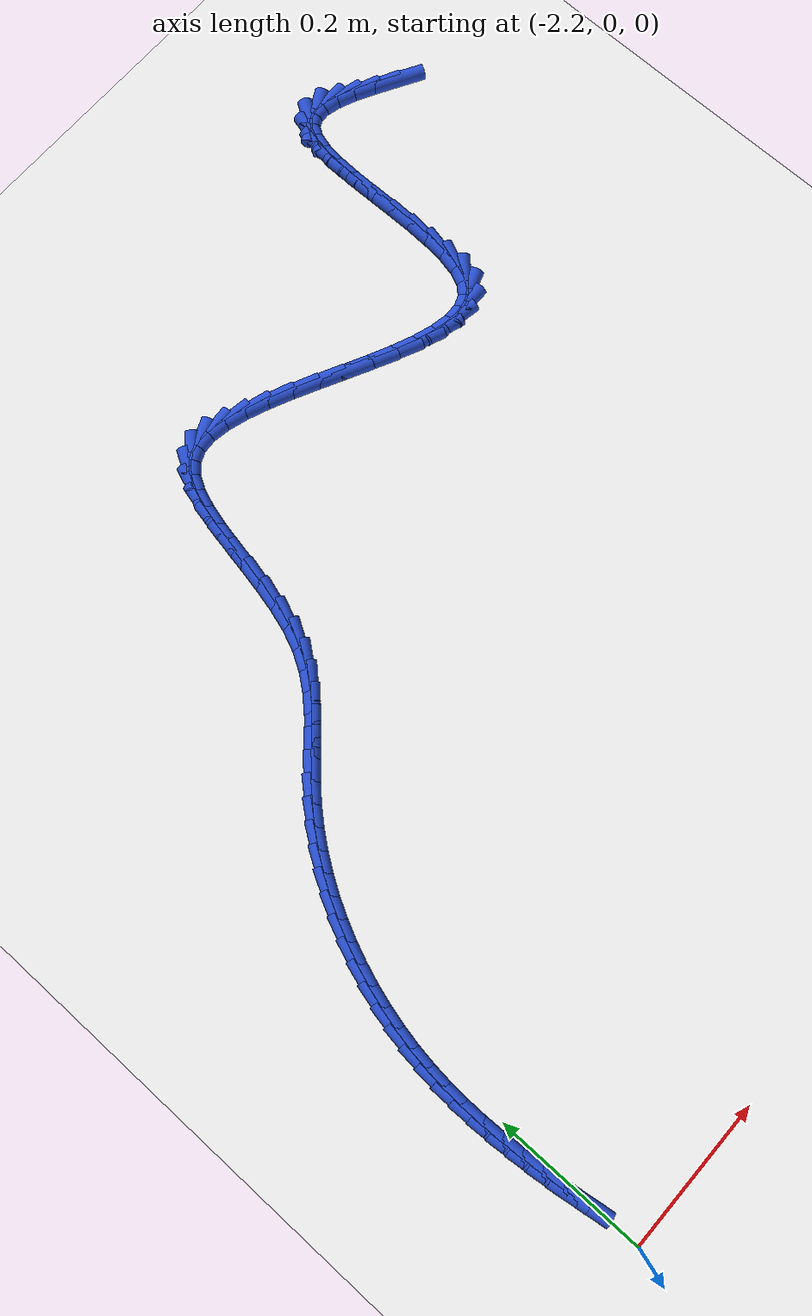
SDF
<sdf version="1.6">
 <world name="default">
  <model name="ground_plane">
   <static>1</static>
   <link name="link">
    <collision name="collision">
     <geometry><plane><normal>0 0 1</normal><size>100 100</size></plane></geometry>
     <surface><friction><ode><mu>100</mu><mu2>50</mu2></ode></friction></surface>
    </collision>
    <visual name="visual">
     <cast_shadows>0</cast_shadows>
     <geometry><plane><normal>0 0 1</normal><size>100 100</size></plane></geometry>
     <material>
      <script><uri>file://media/materials/scripts/gazebo.material</uri><name>Gazebo/WhiteGlow</name></script>
     </material>
    </visual>
   </link>
  </model>
  <model name="line">
   <link name="link_72">
    <pose>-1.284185238181484 1.181666461028741 0.01 0 1.57 -0.5184025050078016</pose>
    <collision name="collision">
     <geometry><cylinder><radius>0.01</radius><length>0.08</length></cylinder></geometry>
    </collision>
    <visual name="visual">
     <material>
      <script><name>Gazebo/Blue</name><uri>file://media/materials/scripts/gazebo.material</uri></script>
     </material>
     <geometry><cylinder><radius>0.01</radius><length>0.08</length></cylinder></geometry>
    </visual>
   </link>
   <link name="link_73">
    <pose>-1.311747661953524 1.1973892408751665 0.01 0 1.57 -0.47705244257798435</pose>
    <collision name="collision">
     <geometry><cylinder><radius>0.01</radius><length>0.08</length></cylinder></geometry>
    </collision>
    <visual name="visual">
     <material>
      <script><name>Gazebo/Blue</name><uri>file://media/materials/scripts/gazebo.material</uri></script>
     </material>
     <geometry><cylinder><radius>0.01</radius><length>0.08</length></cylinder></geometry>
    </visual>
   </link>
   <link name="link_74">
    <pose>-1.3373293025014035 1.2106116265727436 0.01 0 1.57 -0.39543208439316047</pose>
    <collision name="collision">
     <geometry><cylinder><radius>0.01</radius><length>0.08</length></cylinder></geometry>
    </collision>
    <visual name="visual">
     <material>
      <script><name>Gazebo/Blue</name><uri>file://media/materials/scripts/gazebo.material</uri></script>
     </material>
     <geometry><cylinder><radius>0.01</radius><length>0.08</length></cylinder></geometry>
    </visual>
   </link>
   <link name="link_75">
    <pose>-1.3604942921763472 1.2202811359694141 0.01 0 1.57 -0.24433140604695042</pose>
    <collision name="collision">
     <geometry><cylinder><radius>0.01</radius><length>0.08</length></cylinder></geometry>
    </collision>
    <visual name="visual">
     <material>
      <script><name>Gazebo/Blue</name><uri>file://media/materials/scripts/gazebo.material</uri></script>
     </material>
     <geometry><cylinder><radius>0.01</radius><length>0.08</length></cylinder></geometry>
    </visual>
   </link>
   <link name="link_76">
    <pose>-1.3808067633295782 1.225345286913119 0.01 0 1.57 0.03485938675276248</pose>
    <collision name="collision">
     <geometry><cylinder><radius>0.01</radius><length>0.08</length></cylinder></geometry>
    </collision>
    <visual name="visual">
     <material>
      <script><name>Gazebo/Blue</name><uri>file://media/materials/scripts/gazebo.material</uri></script>
     </material>
     <geometry><cylinder><radius>0.01</radius><length>0.08</length></cylinder></geometry>
    </visual>
   </link>
   <link name="link_77">
    <pose>-1.3978308483123199 1.2247515972518 0.01 0 1.57 0.5022140779273673</pose>
    <collision name="collision">
     <geometry><cylinder><radius>0.01</radius><length>0.08</length></cylinder></geometry>
    </collision>
    <visual name="visual">
     <material>
      <script><name>Gazebo/Blue</name><uri>file://media/materials/scripts/gazebo.material</uri></script>
     </material>
     <geometry><cylinder><radius>0.01</radius><length>0.08</length></cylinder></geometry>
    </visual>
   </link>
   <link name="link_78">
    <pose>-1.4111306794757963 1.2174475848333979 0.01 0 1.57 1.0084803409328873</pose>
    <collision name="collision">
     <geometry><cylinder><radius>0.01</radius><length>0.08</length></cylinder></geometry>
    </collision>
    <visual name="visual">
     <material>
      <script><name>Gazebo/Blue</name><uri>file://media/materials/scripts/gazebo.material</uri></script>
     </material>
     <geometry><cylinder><radius>0.01</radius><length>0.08</length></cylinder></geometry>
    </visual>
   </link>
   <link name="link_79">
    <pose>-1.4204280710886583 1.2026940486102145 0.01 0 1.57 1.3050376127300412</pose>
    <collision name="collision">
     <geometry><cylinder><radius>0.01</radius><length>0.08</length></cylinder></geometry>
    </collision>
    <visual name="visual">
     <material>
      <script><name>Gazebo/Blue</name><uri>file://media/materials/scripts/gazebo.material</uri></script>
     </material>
     <geometry><cylinder><radius>0.01</radius><length>0.08</length></cylinder></geometry>
    </visual>
   </link>
   <link name="link_80">
    <pose>-1.4262418623791329 1.181335310005672 0.01 0 1.57 1.4548565718521387</pose>
    <collision name="collision">
     <geometry><cylinder><radius>0.01</radius><length>0.08</length></cylinder></geometry>
    </collision>
    <visual name="visual">
     <material>
      <script><name>Gazebo/Blue</name><uri>file://media/materials/scripts/gazebo.material</uri></script>
     </material>
     <geometry><cylinder><radius>0.01</radius><length>0.08</length></cylinder></geometry>
    </visual>
   </link>
   <link name="link_81">
    <pose>-1.4293421349865743 1.1547148567477672 0.01 0 1.57 1.5329301169874554</pose>
    <collision name="collision">
     <geometry><cylinder><radius>0.01</radius><length>0.08</length></cylinder></geometry>
    </collision>
    <visual name="visual">
     <material>
      <script><name>Gazebo/Blue</name><uri>file://media/materials/scripts/gazebo.material</uri></script>
     </material>
     <geometry><cylinder><radius>0.01</radius><length>0.08</length></cylinder></geometry>
    </visual>
   </link>
   <link name="link_82">
    <pose>-1.430499064962297 1.1241763641413793 0.01 0 1.57 -1.5703059854283532</pose>
    <collision name="collision">
     <geometry><cylinder><radius>0.01</radius><length>0.08</length></cylinder></geometry>
    </collision>
    <visual name="visual">
     <material>
      <script><name>Gazebo/Blue</name><uri>file://media/materials/scripts/gazebo.material</uri></script>
     </material>
     <geometry><cylinder><radius>0.01</radius><length>0.08</length></cylinder></geometry>
    </visual>
   </link>
   <link name="link_83">
    <pose>-1.4304828283576159 1.0910635074913895 0.01 0 1.57 -1.558590064796977</pose>
    <collision name="collision">
     <geometry><cylinder><radius>0.01</radius><length>0.08</length></cylinder></geometry>
    </collision>
    <visual name="visual">
     <material>
      <script><name>Gazebo/Blue</name><uri>file://media/materials/scripts/gazebo.material</uri></script>
     </material>
     <geometry><cylinder><radius>0.01</radius><length>0.08</length></cylinder></geometry>
    </visual>
   </link>
   <link name="link_84">
    <pose>-1.4300636012238443 1.0567199621026768 0.01 0 1.57 -1.5692760018793463</pose>
    <collision name="collision">
     <geometry><cylinder><radius>0.01</radius><length>0.08</length></cylinder></geometry>
    </collision>
    <visual name="visual">
     <material>
      <script><name>Gazebo/Blue</name><uri>file://media/materials/scripts/gazebo.material</uri></script>
     </material>
     <geometry><cylinder><radius>0.01</radius><length>0.08</length></cylinder></geometry>
    </visual>
   </link>
   <link name="link_85">
    <pose>-1.430011559612297 1.0224894032801215 0.01 0 1.57 1.5376930466570178</pose>
    <collision name="collision">
     <geometry><cylinder><radius>0.01</radius><length>0.08</length></cylinder></geometry>
    </collision>
    <visual name="visual">
     <material>
      <script><name>Gazebo/Blue</name><uri>file://media/materials/scripts/gazebo.material</uri></script>
     </material>
     <geometry><cylinder><radius>0.01</radius><length>0.08</length></cylinder></geometry>
    </visual>
   </link>
   <link name="link_86">
    <pose>-1.4310968795742873 0.9897155063286027 0.01 0 1.57 1.4712762692113137</pose>
    <collision name="collision">
     <geometry><cylinder><radius>0.01</radius><length>0.08</length></cylinder></geometry>
    </collision>
    <visual name="visual">
     <material>
      <script><name>Gazebo/Blue</name><uri>file://media/materials/scripts/gazebo.material</uri></script>
     </material>
     <geometry><cylinder><radius>0.01</radius><length>0.08</length></cylinder></geometry>
    </visual>
   </link>
   <link name="link_87">
    <pose>-1.43408973716113 0.9597419465530008 0.01 0 1.57 1.3546865842491658</pose>
    <collision name="collision">
     <geometry><cylinder><radius>0.01</radius><length>0.08</length></cylinder></geometry>
    </collision>
    <visual name="visual">
     <material>
      <script><name>Gazebo/Blue</name><uri>file://media/materials/scripts/gazebo.material</uri></script>
     </material>
     <geometry><cylinder><radius>0.01</radius><length>0.08</length></cylinder></geometry>
    </visual>
   </link>
   <link name="link_88">
    <pose>-1.4397603084241395 0.9339123992581961 0.01 0 1.57 1.1493895482305674</pose>
    <collision name="collision">
     <geometry><cylinder><radius>0.01</radius><length>0.08</length></cylinder></geometry>
    </collision>
    <visual name="visual">
     <material>
      <script><name>Gazebo/Blue</name><uri>file://media/materials/scripts/gazebo.material</uri></script>
     </material>
     <geometry><cylinder><radius>0.01</radius><length>0.08</length></cylinder></geometry>
    </visual>
   </link>
   <link name="link_89">
    <pose>-1.448878769414629 0.9135705397490681 0.01 0 1.57 0.7942676043196346</pose>
    <collision name="collision">
     <geometry><cylinder><radius>0.01</radius><length>0.08</length></cylinder></geometry>
    </collision>
    <visual name="visual">
     <material>
      <script><name>Gazebo/Blue</name><uri>file://media/materials/scripts/gazebo.material</uri></script>
     </material>
     <geometry><cylinder><radius>0.01</radius><length>0.08</length></cylinder></geometry>
    </visual>
   </link>
   <link name="link_90">
    <pose>-1.4621915370798817 0.9000194988729014 0.01 0 1.57 0.354196371251093</pose>
    <collision name="collision">
     <geometry><cylinder><radius>0.01</radius><length>0.08</length></cylinder></geometry>
    </collision>
    <visual name="visual">
     <material>
      <script><name>Gazebo/Blue</name><uri>file://media/materials/scripts/gazebo.material</uri></script>
     </material>
     <geometry><cylinder><radius>0.01</radius><length>0.08</length></cylinder></geometry>
    </visual>
   </link>
   <link name="link_91">
    <pose>-1.4798223298849547 0.8934997844010691 0.01 0 1.57 0.018136367292139327</pose>
    <collision name="collision">
     <geometry><cylinder><radius>0.01</radius><length>0.08</length></cylinder></geometry>
    </collision>
    <visual name="visual">
     <material>
      <script><name>Gazebo/Blue</name><uri>file://media/materials/scripts/gazebo.material</uri></script>
     </material>
     <geometry><cylinder><radius>0.01</radius><length>0.08</length></cylinder></geometry>
    </visual>
   </link>
   <link name="link_92">
    <pose>-1.5012266149029456 0.8931115458579381 0.01 0 1.57 -0.1921995068091973</pose>
    <collision name="collision">
     <geometry><cylinder><radius>0.01</radius><length>0.08</length></cylinder></geometry>
    </collision>
    <visual name="visual">
     <material>
      <script><name>Gazebo/Blue</name><uri>file://media/materials/scripts/gazebo.material</uri></script>
     </material>
     <geometry><cylinder><radius>0.01</radius><length>0.08</length></cylinder></geometry>
    </visual>
   </link>
   <link name="link_93">
    <pose>-1.525826975282518 0.8978988169784029 0.01 0 1.57 -0.3195603212550733</pose>
    <collision name="collision">
     <geometry><cylinder><radius>0.01</radius><length>0.08</length></cylinder></geometry>
    </collision>
    <visual name="visual">
     <material>
      <script><name>Gazebo/Blue</name><uri>file://media/materials/scripts/gazebo.material</uri></script>
     </material>
     <geometry><cylinder><radius>0.01</radius><length>0.08</length></cylinder></geometry>
    </visual>
   </link>
   <link name="link_94">
    <pose>-1.553045994172335 0.9069056314973586 0.01 0 1.57 -0.3970782770921557</pose>
    <collision name="collision">
     <geometry><cylinder><radius>0.01</radius><length>0.08</length></cylinder></geometry>
    </collision>
    <visual name="visual">
     <material>
      <script><name>Gazebo/Blue</name><uri>file://media/materials/scripts/gazebo.material</uri></script>
     </material>
     <geometry><cylinder><radius>0.01</radius><length>0.08</length></cylinder></geometry>
    </visual>
   </link>
   <link name="link_95">
    <pose>-1.5823062547210582 0.9191760231497003 0.01 0 1.57 -0.4430250004340558</pose>
    <collision name="collision">
     <geometry><cylinder><radius>0.01</radius><length>0.08</length></cylinder></geometry>
    </collision>
    <visual name="visual">
     <material>
      <script><name>Gazebo/Blue</name><uri>file://media/materials/scripts/gazebo.material</uri></script>
     </material>
     <geometry><cylinder><radius>0.01</radius><length>0.08</length></cylinder></geometry>
    </visual>
   </link>
   <link name="link_96">
    <pose>-1.6130303400773507 0.9337540256703221 0.01 0 1.57 -0.4667909839030013</pose>
    <collision name="collision">
     <geometry><cylinder><radius>0.01</radius><length>0.08</length></cylinder></geometry>
    </collision>
    <visual name="visual">
     <material>
      <script><name>Gazebo/Blue</name><uri>file://media/materials/scripts/gazebo.material</uri></script>
     </material>
     <geometry><cylinder><radius>0.01</radius><length>0.08</length></cylinder></geometry>
    </visual>
   </link>
   <link name="link_97">
    <pose>-1.6446408333898743 0.9496836727941192 0.01 0 1.57 -0.4727682061259887</pose>
    <collision name="collision">
     <geometry><cylinder><radius>0.01</radius><length>0.08</length></cylinder></geometry>
    </collision>
    <visual name="visual">
     <material>
      <script><name>Gazebo/Blue</name><uri>file://media/materials/scripts/gazebo.material</uri></script>
     </material>
     <geometry><cylinder><radius>0.01</radius><length>0.08</length></cylinder></geometry>
    </visual>
   </link>
   <link name="link_98">
    <pose>-1.6765603178072923 0.9660089982559867 0.01 0 1.57 -0.46211747291487204</pose>
    <collision name="collision">
     <geometry><cylinder><radius>0.01</radius><length>0.08</length></cylinder></geometry>
    </collision>
    <visual name="visual">
     <material>
      <script><name>Gazebo/Blue</name><uri>file://media/materials/scripts/gazebo.material</uri></script>
     </material>
     <geometry><cylinder><radius>0.01</radius><length>0.08</length></cylinder></geometry>
    </visual>
   </link>
   <link name="link_99">
    <pose>-1.7082113764782656 0.9817740357908187 0.01 0 1.57 -0.43323682837639693</pose>
    <collision name="collision">
     <geometry><cylinder><radius>0.01</radius><length>0.08</length></cylinder></geometry>
    </collision>
    <visual name="visual">
     <material>
      <script><name>Gazebo/Blue</name><uri>file://media/materials/scripts/gazebo.material</uri></script>
     </material>
     <geometry><cylinder><radius>0.01</radius><length>0.08</length></cylinder></geometry>
    </visual>
   </link>
   <link name="link_100">
    <pose>-1.7390165925514598 0.996022819133511 0.01 0 1.57 -0.3812038963590724</pose>
    <collision name="collision">
     <geometry><cylinder><radius>0.01</radius><length>0.08</length></cylinder></geometry>
    </collision>
    <visual name="visual">
     <material>
      <script><name>Gazebo/Blue</name><uri>file://media/materials/scripts/gazebo.material</uri></script>
     </material>
     <geometry><cylinder><radius>0.01</radius><length>0.08</length></cylinder></geometry>
    </visual>
   </link>
   <link name="link_101">
    <pose>-1.7683985491755343 1.0077993820189577 0.01 0 1.57 -0.2959402347343625</pose>
    <collision name="collision">
     <geometry><cylinder><radius>0.01</radius><length>0.08</length></cylinder></geometry>
    </collision>
    <visual name="visual">
     <material>
      <script><name>Gazebo/Blue</name><uri>file://media/materials/scripts/gazebo.material</uri></script>
     </material>
     <geometry><cylinder><radius>0.01</radius><length>0.08</length></cylinder></geometry>
    </visual>
   </link>
   <link name="link_102">
    <pose>-1.7957798294991532 1.0161477581820537 0.01 0 1.57 -0.15848674019851228</pose>
    <collision name="collision">
     <geometry><cylinder><radius>0.01</radius><length>0.08</length></cylinder></geometry>
    </collision>
    <visual name="visual">
     <material>
      <script><name>Gazebo/Blue</name><uri>file://media/materials/scripts/gazebo.material</uri></script>
     </material>
     <geometry><cylinder><radius>0.01</radius><length>0.08</length></cylinder></geometry>
    </visual>
   </link>
   <link name="link_103">
    <pose>-1.8205830166709782 1.0201119813576938 0.01 0 1.57 0.06347322209823193</pose>
    <collision name="collision">
     <geometry><cylinder><radius>0.01</radius><length>0.08</length></cylinder></geometry>
    </collision>
    <visual name="visual">
     <material>
      <script><name>Gazebo/Blue</name><uri>file://media/materials/scripts/gazebo.material</uri></script>
     </material>
     <geometry><cylinder><radius>0.01</radius><length>0.08</length></cylinder></geometry>
    </visual>
   </link>
   <link name="link_104">
    <pose>-1.8422306938396722 1.0187360852807728 0.01 0 1.57 0.4029114048233174</pose>
    <collision name="collision">
     <geometry><cylinder><radius>0.01</radius><length>0.08</length></cylinder></geometry>
    </collision>
    <visual name="visual">
     <material>
      <script><name>Gazebo/Blue</name><uri>file://media/materials/scripts/gazebo.material</uri></script>
     </material>
     <geometry><cylinder><radius>0.01</radius><length>0.08</length></cylinder></geometry>
    </visual>
   </link>
   <link name="link_105">
    <pose>-1.8601639971135135 1.0110923861882375 0.01 0 1.57 0.7768106653489705</pose>
    <collision name="collision">
     <geometry><cylinder><radius>0.01</radius><length>0.08</length></cylinder></geometry>
    </collision>
    <visual name="visual">
     <material>
      <script><name>Gazebo/Blue</name><uri>file://media/materials/scripts/gazebo.material</uri></script>
     </material>
     <geometry><cylinder><radius>0.01</radius><length>0.08</length></cylinder></geometry>
    </visual>
   </link>
   <link name="link_106">
    <pose>-1.8743870941230691 0.9971114968106473 0.01 0 1.57 1.0483372128779123</pose>
    <collision name="collision">
     <geometry><cylinder><radius>0.01</radius><length>0.08</length></cylinder></geometry>
    </collision>
    <visual name="visual">
     <material>
      <script><name>Gazebo/Blue</name><uri>file://media/materials/scripts/gazebo.material</uri></script>
     </material>
     <geometry><cylinder><radius>0.01</radius><length>0.08</length></cylinder></geometry>
    </visual>
   </link>
   <link name="link_107">
    <pose>-1.8855552791628323 0.9777166203649234 0.01 0 1.57 1.2168730650824295</pose>
    <collision name="collision">
     <geometry><cylinder><radius>0.01</radius><length>0.08</length></cylinder></geometry>
    </collision>
    <visual name="visual">
     <material>
      <script><name>Gazebo/Blue</name><uri>file://media/materials/scripts/gazebo.material</uri></script>
     </material>
     <geometry><cylinder><radius>0.01</radius><length>0.08</length></cylinder></geometry>
    </visual>
   </link>
   <link name="link_108">
    <pose>-1.8943601353134512 0.9538862794181149 0.01 0 1.57 1.315110002035121</pose>
    <collision name="collision">
     <geometry><cylinder><radius>0.01</radius><length>0.08</length></cylinder></geometry>
    </collision>
    <visual name="visual">
     <material>
      <script><name>Gazebo/Blue</name><uri>file://media/materials/scripts/gazebo.material</uri></script>
     </material>
     <geometry><cylinder><radius>0.01</radius><length>0.08</length></cylinder></geometry>
    </visual>
   </link>
   <link name="link_109">
    <pose>-1.9014932456555746 0.9265989965372712 0.01 0 1.57 1.3669546927265779</pose>
    <collision name="collision">
     <geometry><cylinder><radius>0.01</radius><length>0.08</length></cylinder></geometry>
    </collision>
    <visual name="visual">
     <material>
      <script><name>Gazebo/Blue</name><uri>file://media/materials/scripts/gazebo.material</uri></script>
     </material>
     <geometry><cylinder><radius>0.01</radius><length>0.08</length></cylinder></geometry>
    </visual>
   </link>
   <link name="link_110">
    <pose>-1.907646193269852 0.8968332942894431 0.01 0 1.57 1.3853844764474892</pose>
    <collision name="collision">
     <geometry><cylinder><radius>0.01</radius><length>0.08</length></cylinder></geometry>
    </collision>
    <visual name="visual">
     <material>
      <script><name>Gazebo/Blue</name><uri>file://media/materials/scripts/gazebo.material</uri></script>
     </material>
     <geometry><cylinder><radius>0.01</radius><length>0.08</length></cylinder></geometry>
    </visual>
   </link>
   <link name="link_111">
    <pose>-1.9135105612369316 0.8655676952416796 0.01 0 1.57 1.3761253981010435</pose>
    <collision name="collision">
     <geometry><cylinder><radius>0.01</radius><length>0.08</length></cylinder></geometry>
    </collision>
    <visual name="visual">
     <material>
      <script><name>Gazebo/Blue</name><uri>file://media/materials/scripts/gazebo.material</uri></script>
     </material>
     <geometry><cylinder><radius>0.01</radius><length>0.08</length></cylinder></geometry>
    </visual>
   </link>
   <link name="link_112">
    <pose>-1.9197779326374622 0.8337807219610306 0.01 0 1.57 1.3400010315377042</pose>
    <collision name="collision">
     <geometry><cylinder><radius>0.01</radius><length>0.08</length></cylinder></geometry>
    </collision>
    <visual name="visual">
     <material>
      <script><name>Gazebo/Blue</name><uri>file://media/materials/scripts/gazebo.material</uri></script>
     </material>
     <geometry><cylinder><radius>0.01</radius><length>0.08</length></cylinder></geometry>
    </visual>
   </link>
   <link name="link_113">
    <pose>-1.9271398905520924 0.8024508970145449 0.01 0 1.57 1.2738282813133208</pose>
    <collision name="collision">
     <geometry><cylinder><radius>0.01</radius><length>0.08</length></cylinder></geometry>
    </collision>
    <visual name="visual">
     <material>
      <script><name>Gazebo/Blue</name><uri>file://media/materials/scripts/gazebo.material</uri></script>
     </material>
     <geometry><cylinder><radius>0.01</radius><length>0.08</length></cylinder></geometry>
    </visual>
   </link>
   <link name="link_114">
    <pose>-1.9362880180614714 0.7725567429692735 0.01 0 1.57 1.1705637170387078</pose>
    <collision name="collision">
     <geometry><cylinder><radius>0.01</radius><length>0.08</length></cylinder></geometry>
    </collision>
    <visual name="visual">
     <material>
      <script><name>Gazebo/Blue</name><uri>file://media/materials/scripts/gazebo.material</uri></script>
     </material>
     <geometry><cylinder><radius>0.01</radius><length>0.08</length></cylinder></geometry>
    </visual>
   </link>
   <link name="link_115">
    <pose>-1.9479138958042108 0.7450767793287286 0.01 0 1.57 1.0328350369906198</pose>
    <collision name="collision">
     <geometry><cylinder><radius>0.01</radius><length>0.08</length></cylinder></geometry>
    </collision>
    <visual name="visual">
     <material>
      <script><name>Gazebo/Blue</name><uri>file://media/materials/scripts/gazebo.material</uri></script>
     </material>
     <geometry><cylinder><radius>0.01</radius><length>0.08</length></cylinder></geometry>
    </visual>
   </link>
   <link name="link_116">
    <pose>-1.9624670325772149 0.7206858463493545 0.01 0 1.57 0.9070067130095395</pose>
    <collision name="collision">
     <geometry><cylinder><radius>0.01</radius><length>0.08</length></cylinder></geometry>
    </collision>
    <visual name="visual">
     <material>
      <script><name>Gazebo/Blue</name><uri>file://media/materials/scripts/gazebo.material</uri></script>
     </material>
     <geometry><cylinder><radius>0.01</radius><length>0.08</length></cylinder></geometry>
    </visual>
   </link>
   <link name="link_117">
    <pose>-1.9794906886368462 0.6989218950380746 0.01 0 1.57 0.812261770192222</pose>
    <collision name="collision">
     <geometry><cylinder><radius>0.01</radius><length>0.08</length></cylinder></geometry>
    </collision>
    <visual name="visual">
     <material>
      <script><name>Gazebo/Blue</name><uri>file://media/materials/scripts/gazebo.material</uri></script>
     </material>
     <geometry><cylinder><radius>0.01</radius><length>0.08</length></cylinder></geometry>
    </visual>
   </link>
   <link name="link_118">
    <pose>-1.998316090040067 0.6790568793921126 0.01 0 1.57 0.7527017967321166</pose>
    <collision name="collision">
     <geometry><cylinder><radius>0.01</radius><length>0.08</length></cylinder></geometry>
    </collision>
    <visual name="visual">
     <material>
      <script><name>Gazebo/Blue</name><uri>file://media/materials/scripts/gazebo.material</uri></script>
     </material>
     <geometry><cylinder><radius>0.01</radius><length>0.08</length></cylinder></geometry>
    </visual>
   </link>
   <link name="link_119">
    <pose>-2.0182744628438396 0.6603627534086918 0.01 0 1.57 0.7293134776081187</pose>
    <collision name="collision">
     <geometry><cylinder><radius>0.01</radius><length>0.08</length></cylinder></geometry>
    </collision>
    <visual name="visual">
     <material>
      <script><name>Gazebo/Blue</name><uri>file://media/materials/scripts/gazebo.material</uri></script>
     </material>
     <geometry><cylinder><radius>0.01</radius><length>0.08</length></cylinder></geometry>
    </visual>
   </link>
   <link name="link_120">
    <pose>-2.0386970331051257 0.6421114710850357 0.01 0 1.57 0.7420365914663666</pose>
    <collision name="collision">
     <geometry><cylinder><radius>0.01</radius><length>0.08</length></cylinder></geometry>
    </collision>
    <visual name="visual">
     <material>
      <script><name>Gazebo/Blue</name><uri>file://media/materials/scripts/gazebo.material</uri></script>
     </material>
     <geometry><cylinder><radius>0.01</radius><length>0.08</length></cylinder></geometry>
    </visual>
   </link>
   <link name="link_121">
    <pose>-2.0589150268808885 0.6235749864183683 0.01 0 1.57 0.7894998637552949</pose>
    <collision name="collision">
     <geometry><cylinder><radius>0.01</radius><length>0.08</length></cylinder></geometry>
    </collision>
    <visual name="visual">
     <material>
      <script><name>Gazebo/Blue</name><uri>file://media/materials/scripts/gazebo.material</uri></script>
     </material>
     <geometry><cylinder><radius>0.01</radius><length>0.08</length></cylinder></geometry>
    </visual>
   </link>
   <link name="link_122">
    <pose>-2.0782795120118753 0.6040509915003192 0.01 0 1.57 0.8514536949295336</pose>
    <collision name="collision">
     <geometry><cylinder><radius>0.01</radius><length>0.08</length></cylinder></geometry>
    </collision>
    <visual name="visual">
     <material>
      <script><name>Gazebo/Blue</name><uri>file://media/materials/scripts/gazebo.material</uri></script>
     </material>
     <geometry><cylinder><radius>0.01</radius><length>0.08</length></cylinder></geometry>
    </visual>
   </link>
   <link name="link_123">
    <pose>-2.096478253898267 0.5832739311694193 0.01 0 1.57 0.9113301925613584</pose>
    <collision name="collision">
     <geometry><cylinder><radius>0.01</radius><length>0.08</length></cylinder></geometry>
    </collision>
    <visual name="visual">
     <material>
      <script><name>Gazebo/Blue</name><uri>file://media/materials/scripts/gazebo.material</uri></script>
     </material>
     <geometry><cylinder><radius>0.01</radius><length>0.08</length></cylinder></geometry>
    </visual>
   </link>
   <link name="link_124">
    <pose>-2.113480206106835 0.5613429980941455 0.01 0 1.57 0.9688688530106147</pose>
    <collision name="collision">
     <geometry><cylinder><radius>0.01</radius><length>0.08</length></cylinder></geometry>
    </collision>
    <visual name="visual">
     <material>
      <script><name>Gazebo/Blue</name><uri>file://media/materials/scripts/gazebo.material</uri></script>
     </material>
     <geometry><cylinder><radius>0.01</radius><length>0.08</length></cylinder></geometry>
    </visual>
   </link>
   <link name="link_125">
    <pose>-2.129262949027449 0.5383685753676758 0.01 0 1.57 1.0243522836739138</pose>
    <collision name="collision">
     <geometry><cylinder><radius>0.01</radius><length>0.08</length></cylinder></geometry>
    </collision>
    <visual name="visual">
     <material>
      <script><name>Gazebo/Blue</name><uri>file://media/materials/scripts/gazebo.material</uri></script>
     </material>
     <geometry><cylinder><radius>0.01</radius><length>0.08</length></cylinder></geometry>
    </visual>
   </link>
   <link name="link_126">
    <pose>-2.143804063049979 0.5144610460831877 0.01 0 1.57 1.0780853560734631</pose>
    <collision name="collision">
     <geometry><cylinder><radius>0.01</radius><length>0.08</length></cylinder></geometry>
    </collision>
    <visual name="visual">
     <material>
      <script><name>Gazebo/Blue</name><uri>file://media/materials/scripts/gazebo.material</uri></script>
     </material>
     <geometry><cylinder><radius>0.01</radius><length>0.08</length></cylinder></geometry>
    </visual>
   </link>
   <link name="link_127">
    <pose>-2.1570811285642932 0.4897307933338596 0.01 0 1.57 1.1303871598630746</pose>
    <collision name="collision">
     <geometry><cylinder><radius>0.01</radius><length>0.08</length></cylinder></geometry>
    </collision>
    <visual name="visual">
     <material>
      <script><name>Gazebo/Blue</name><uri>file://media/materials/scripts/gazebo.material</uri></script>
     </material>
     <geometry><cylinder><radius>0.01</radius><length>0.08</length></cylinder></geometry>
    </visual>
   </link>
   <link name="link_128">
    <pose>-2.169071725960262 0.4642882002128686 0.01 0 1.57 1.1815858957041507</pose>
    <collision name="collision">
     <geometry><cylinder><radius>0.01</radius><length>0.08</length></cylinder></geometry>
    </collision>
    <visual name="visual">
     <material>
      <script><name>Gazebo/Blue</name><uri>file://media/materials/scripts/gazebo.material</uri></script>
     </material>
     <geometry><cylinder><radius>0.01</radius><length>0.08</length></cylinder></geometry>
    </visual>
   </link>
   <link name="link_129">
    <pose>-2.179753435627755 0.4382436498133928 0.01 0 1.57 1.2320161323400503</pose>
    <collision name="collision">
     <geometry><cylinder><radius>0.01</radius><length>0.08</length></cylinder></geometry>
    </collision>
    <visual name="visual">
     <material>
      <script><name>Gazebo/Blue</name><uri>file://media/materials/scripts/gazebo.material</uri></script>
     </material>
     <geometry><cylinder><radius>0.01</radius><length>0.08</length></cylinder></geometry>
    </visual>
   </link>
   <link name="link_130">
    <pose>-2.1891038379566417 0.4117075252286098 0.01 0 1.57 1.282017874610606</pose>
    <collision name="collision">
     <geometry><cylinder><radius>0.01</radius><length>0.08</length></cylinder></geometry>
    </collision>
    <visual name="visual">
     <material>
      <script><name>Gazebo/Blue</name><uri>file://media/materials/scripts/gazebo.material</uri></script>
     </material>
     <geometry><cylinder><radius>0.01</radius><length>0.08</length></cylinder></geometry>
    </visual>
   </link>
   <link name="link_131">
    <pose>-2.1971005133367916 0.3847902095516969 0.01 0 1.57 1.3319369414406521</pose>
    <collision name="collision">
     <geometry><cylinder><radius>0.01</radius><length>0.08</length></cylinder></geometry>
    </collision>
    <visual name="visual">
     <material>
      <script><name>Gazebo/Blue</name><uri>file://media/materials/scripts/gazebo.material</uri></script>
     </material>
     <geometry><cylinder><radius>0.01</radius><length>0.08</length></cylinder></geometry>
    </visual>
   </link>
   <link name="link_132">
    <pose>-2.203721042158075 0.35760208587583275 0.01 0 1.57 1.3821262024598169</pose>
    <collision name="collision">
     <geometry><cylinder><radius>0.01</radius><length>0.08</length></cylinder></geometry>
    </collision>
    <visual name="visual">
     <material>
      <script><name>Gazebo/Blue</name><uri>file://media/materials/scripts/gazebo.material</uri></script>
     </material>
     <geometry><cylinder><radius>0.01</radius><length>0.08</length></cylinder></geometry>
    </visual>
   </link>
   <link name="link_133">
    <pose>-2.2089430048103607 0.3302535372941947 0.01 0 1.57 1.4329454482247903</pose>
    <collision name="collision">
     <geometry><cylinder><radius>0.01</radius><length>0.08</length></cylinder></geometry>
    </collision>
    <visual name="visual">
     <material>
      <script><name>Gazebo/Blue</name><uri>file://media/materials/scripts/gazebo.material</uri></script>
     </material>
     <geometry><cylinder><radius>0.01</radius><length>0.08</length></cylinder></geometry>
    </visual>
   </link>
   <link name="link_134">
    <pose>-2.2127440384194865 0.3028549000960122 0.01 0 1.57 1.483435659547746</pose>
    <collision name="collision">
     <geometry><cylinder><radius>0.01</radius><length>0.08</length></cylinder></geometry>
    </collision>
    <visual name="visual">
     <material>
      <script><name>Gazebo/Blue</name><uri>file://media/materials/scripts/gazebo.material</uri></script>
     </material>
     <geometry><cylinder><radius>0.01</radius><length>0.08</length></cylinder></geometry>
    </visual>
   </link>
   <link name="link_135">
    <pose>-2.215141287162558 0.2754839194998807 0.01 0 1.57 1.5299069151279834</pose>
    <collision name="collision">
     <geometry><cylinder><radius>0.01</radius><length>0.08</length></cylinder></geometry>
    </collision>
    <visual name="visual">
     <material>
      <script><name>Gazebo/Blue</name><uri>file://media/materials/scripts/gazebo.material</uri></script>
     </material>
     <geometry><cylinder><radius>0.01</radius><length>0.08</length></cylinder></geometry>
    </visual>
   </link>
   <link name="link_136">
    <pose>-2.216260446004942 0.2481287924970729 0.01 0 1.57 -1.5702571291617153</pose>
    <collision name="collision">
     <geometry><cylinder><radius>0.01</radius><length>0.08</length></cylinder></geometry>
    </collision>
    <visual name="visual">
     <material>
      <script><name>Gazebo/Blue</name><uri>file://media/materials/scripts/gazebo.material</uri></script>
     </material>
     <geometry><cylinder><radius>0.01</radius><length>0.08</length></cylinder></geometry>
    </visual>
   </link>
   <link name="link_137">
    <pose>-2.216245690147697 0.22076247093533485 0.01 0 1.57 -1.5341584204677692</pose>
    <collision name="collision">
     <geometry><cylinder><radius>0.01</radius><length>0.08</length></cylinder></geometry>
    </collision>
    <visual name="visual">
     <material>
      <script><name>Gazebo/Blue</name><uri>file://media/materials/scripts/gazebo.material</uri></script>
     </material>
     <geometry><cylinder><radius>0.01</radius><length>0.08</length></cylinder></geometry>
    </visual>
   </link>
   <link name="link_138">
    <pose>-2.2152411947918837 0.1933579066624132 0.01 0 1.57 -1.50354915587912</pose>
    <collision name="collision">
     <geometry><cylinder><radius>0.01</radius><length>0.08</length></cylinder></geometry>
    </collision>
    <visual name="visual">
     <material>
      <script><name>Gazebo/Blue</name><uri>file://media/materials/scripts/gazebo.material</uri></script>
     </material>
     <geometry><cylinder><radius>0.01</radius><length>0.08</length></cylinder></geometry>
    </visual>
   </link>
   <link name="link_139">
    <pose>-2.213391135138562 0.1658880515260546 0.01 0 1.57 -1.4784888013561603</pose>
    <collision name="collision">
     <geometry><cylinder><radius>0.01</radius><length>0.08</length></cylinder></geometry>
    </collision>
    <visual name="visual">
     <material>
      <script><name>Gazebo/Blue</name><uri>file://media/materials/scripts/gazebo.material</uri></script>
     </material>
     <geometry><cylinder><radius>0.01</radius><length>0.08</length></cylinder></geometry>
    </visual>
   </link>
   <link name="link_140">
    <pose>-2.2108396863887894 0.13832585737400505 0.01 0 1.57 -1.4585013465809795</pose>
    <collision name="collision">
     <geometry><cylinder><radius>0.01</radius><length>0.08</length></cylinder></geometry>
    </collision>
    <visual name="visual">
     <material>
      <script><name>Gazebo/Blue</name><uri>file://media/materials/scripts/gazebo.material</uri></script>
     </material>
     <geometry><cylinder><radius>0.01</radius><length>0.08</length></cylinder></geometry>
    </visual>
   </link>
   <link name="link_141">
    <pose>-2.2077186910496294 0.1106499493462666 0.01 0 1.57 -1.4398252962671882</pose>
    <collision name="collision">
     <geometry><cylinder><radius>0.01</radius><length>0.08</length></cylinder></geometry>
    </collision>
    <visual name="visual">
     <material>
      <script><name>Gazebo/Blue</name><uri>file://media/materials/scripts/gazebo.material</uri></script>
     </material>
     <geometry><cylinder><radius>0.01</radius><length>0.08</length></cylinder></geometry>
    </visual>
   </link>
   <link name="link_142">
    <pose>-2.2040612678089593 0.0828843675650628 0.01 0 1.57 -1.4206153235454742</pose>
    <collision name="collision">
     <geometry><cylinder><radius>0.01</radius><length>0.08</length></cylinder></geometry>
    </collision>
    <visual name="visual">
     <material>
      <script><name>Gazebo/Blue</name><uri>file://media/materials/scripts/gazebo.material</uri></script>
     </material>
     <geometry><cylinder><radius>0.01</radius><length>0.08</length></cylinder></geometry>
    </visual>
   </link>
  </model>
 </world>
</sdf>
